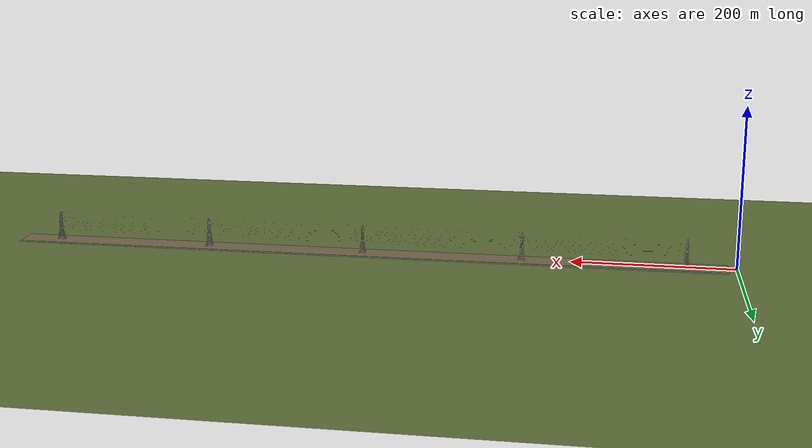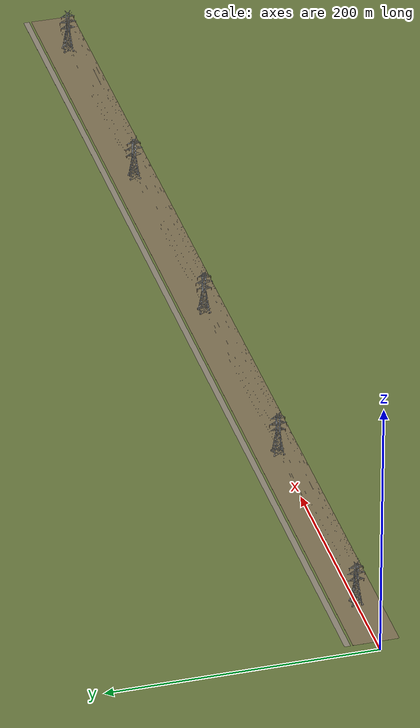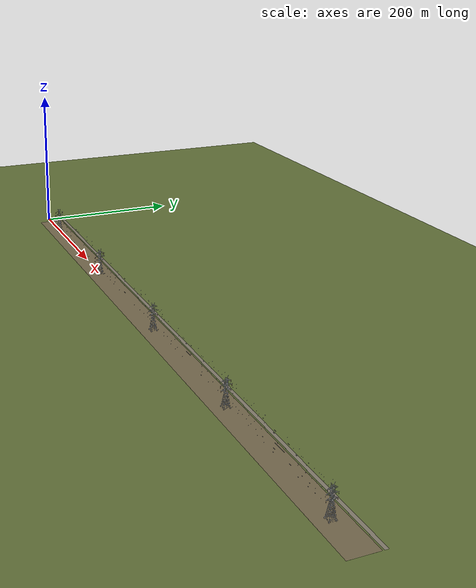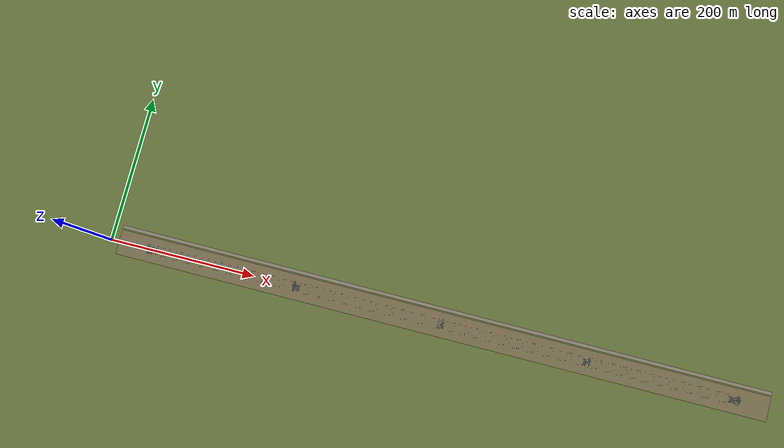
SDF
<?xml version="1.0" encoding="UTF-8"?>
<sdf version="1.9">
  <world name="default">

    <physics type="ode">
      <max_step_size>0.004</max_step_size>
      <real_time_factor>1.0</real_time_factor>
      <real_time_update_rate>250</real_time_update_rate>
    </physics>
    <gravity>0 0 -9.8</gravity>
    <magnetic_field>6e-06 2.3e-05 -4.2e-05</magnetic_field>
    <atmosphere type="adiabatic"/>

    <scene>
      <grid>false</grid>
      <ambient>0.6 0.6 0.6 1</ambient>
      <background>0.53 0.81 0.98 1</background>
      <shadows>true</shadows>
      <sky>
        <time>10</time>
        <sunrise>6</sunrise>
        <sunset>20</sunset>
        <clouds>
          <speed>12</speed>
          <mean_size>0.5</mean_size>
          <ambient>0.8 0.8 0.8 1</ambient>
        </clouds>
      </sky>
    </scene>

    <!-- Textured ground plane -->
    <model name="ground_plane">
      <static>true</static>
      <link name="link">
        <collision name="collision">
          <geometry>
            <plane>
              <normal>0 0 1</normal>
              <size>1 1</size>
            </plane>
          </geometry>
          <surface>
            <friction><ode/></friction>
            <bounce/>
            <contact/>
          </surface>
        </collision>
        <visual name="visual">
          <cast_shadows>false</cast_shadows>
          <geometry>
            <plane>
              <normal>0 0 1</normal>
              <size>4000 4000</size>
            </plane>
          </geometry>
          <material>
            <ambient>0.22 0.28 0.13 1</ambient>
            <diffuse>0.38 0.44 0.22 1</diffuse>
            <specular>0.05 0.05 0.05 1</specular>
          </material>
        </visual>
        <pose>0 0 0 0 0 0</pose>
        <inertial>
          <pose>0 0 0 0 0 0</pose>
          <mass>1</mass>
          <inertia>
            <ixx>1</ixx><ixy>0</ixy><ixz>0</ixz>
            <iyy>1</iyy><iyz>0</iyz><izz>1</izz>
          </inertia>
        </inertial>
        <enable_wind>false</enable_wind>
      </link>
      <pose>0 0 0 0 0 0</pose>
      <self_collide>false</self_collide>
    </model>

    <!-- Sun lighting -->
    <light name="sunUTC" type="directional">
      <pose>0 0 500 0 0 0</pose>
      <cast_shadows>true</cast_shadows>
      <intensity>1</intensity>
      <direction>-0.8 0.2 -0.5</direction>
      <diffuse>1.0 0.95 0.8 1</diffuse>
      <specular>0.5 0.5 0.5 1</specular>
      <attenuation>
        <range>2000</range>
        <linear>0</linear>
        <constant>1</constant>
        <quadratic>0</quadratic>
      </attenuation>
      <spot>
        <inner_angle>0</inner_angle>
        <outer_angle>0</outer_angle>
        <falloff>0</falloff>
      </spot>
    </light>

    <spherical_coordinates>
      <surface_model>EARTH_WGS84</surface_model>
      <world_frame_orientation>ENU</world_frame_orientation>
      <latitude_deg>24.867412</latitude_deg>
      <longitude_deg>67.057352</longitude_deg>
      <elevation>8</elevation>
    </spherical_coordinates>

    <include>
      <uri>model://hv_tower_220kv</uri>
      <name>tower_1</name>
      <pose>60 0 0 0 0 0</pose>
    </include>
    <include>
      <uri>model://hv_tower_220kv</uri>
      <name>tower_2</name>
      <pose>260 0 0 0 0 0</pose>
    </include>
    <include>
      <uri>model://hv_tower_220kv</uri>
      <name>tower_3</name>
      <pose>460 0 0 0 0 0</pose>
    </include>
    <include>
      <uri>model://hv_tower_220kv</uri>
      <name>tower_4</name>
      <pose>660 0 0 0 0 0</pose>
    </include>
    <include>
      <uri>model://hv_tower_220kv</uri>
      <name>tower_5</name>
      <pose>860 0 0 0 0 0</pose>
    </include>

    <include>
      <uri>model://hv_span_220kv</uri>
      <name>span_1_2</name>
      <pose>60 0 0 0 0 0</pose>
    </include>
    <include>
      <uri>model://hv_span_220kv</uri>
      <name>span_2_3</name>
      <pose>260 0 0 0 0 0</pose>
    </include>
    <include>
      <uri>model://hv_span_220kv</uri>
      <name>span_3_4</name>
      <pose>460 0 0 0 0 0</pose>
    </include>
    <include>
      <uri>model://hv_span_220kv</uri>
      <name>span_4_5</name>
      <pose>660 0 0 0 0 0</pose>
    </include>

    <model name="right_of_way">
      <static>true</static>
      <link name="link">
        <visual name="cleared_strip">
          <cast_shadows>false</cast_shadows>
          <pose>460 0 0.01 0 0 0</pose>
          <geometry><box><size>900 34 0.02</size></box></geometry>
          <material>
            <ambient>0.24 0.21 0.15 1</ambient>
            <diffuse>0.46 0.41 0.30 1</diffuse>
            <specular>0.03 0.03 0.03 1</specular>
          </material>
        </visual>
        <visual name="access_track">
          <cast_shadows>false</cast_shadows>
          <pose>460 21 0.02 0 0 0</pose>
          <geometry><box><size>900 4.5 0.02</size></box></geometry>
          <material>
            <ambient>0.26 0.24 0.20 1</ambient>
            <diffuse>0.52 0.49 0.43 1</diffuse>
            <specular>0.03 0.03 0.03 1</specular>
          </material>
        </visual>
      </link>
    </model>

    <include>
      <uri>model://m4e_camera</uri>
      <name>m4e_camera</name>
      <pose>0 0 0.004 0 0 0</pose>
    </include>

  </world>
</sdf>

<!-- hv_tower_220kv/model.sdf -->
<sdf version="1.9">
  <model name="hv_tower_220kv">
    <static>true</static>
    <link name="link">
      <visual name="steel">
        <cast_shadows>true</cast_shadows>
        <geometry><mesh><uri>meshes/tower_steel.obj</uri></mesh></geometry>
        <material>
          <ambient>0.30 0.31 0.33 1</ambient>
          <diffuse>0.62 0.64 0.66 1</diffuse>
          <specular>0.25 0.25 0.26 1</specular>
        </material>
      </visual>
      <visual name="insulators">
        <cast_shadows>true</cast_shadows>
        <geometry><mesh><uri>meshes/insulators.obj</uri></mesh></geometry>
        <material>
          <ambient>0.20 0.15 0.11 1</ambient>
          <diffuse>0.46 0.34 0.25 1</diffuse>
          <specular>0.35 0.30 0.25 1</specular>
        </material>
      </visual>
      <visual name="foundations">
        <cast_shadows>true</cast_shadows>
        <geometry><mesh><uri>meshes/foundations.obj</uri></mesh></geometry>
        <material>
          <ambient>0.28 0.27 0.25 1</ambient>
          <diffuse>0.60 0.58 0.54 1</diffuse>
          <specular>0.05 0.05 0.05 1</specular>
        </material>
      </visual>

      <collision name="body_0"><pose>0 0 2.67 0 0 0</pose>
        <geometry><box><size>6.52 6.52 5.33</size></box></geometry></collision>
      <collision name="body_1"><pose>0 0 8.00 0 0 0</pose>
        <geometry><box><size>5.16 5.16 5.33</size></box></geometry></collision>
      <collision name="body_2"><pose>0 0 13.33 0 0 0</pose>
        <geometry><box><size>3.79 3.79 5.33</size></box></geometry></collision>
      <collision name="body_3"><pose>0 0 18.67 0 0 0</pose>
        <geometry><box><size>2.60 2.60 5.33</size></box></geometry></collision>
      <collision name="body_4"><pose>0 0 24.00 0 0 0</pose>
        <geometry><box><size>2.60 2.60 5.33</size></box></geometry></collision>
      <collision name="body_5"><pose>0 0 29.34 0 0 0</pose>
        <geometry><box><size>2.60 2.60 5.33</size></box></geometry></collision>
      <collision name="arm_0"><pose>0 0 21.02 0 0 0</pose>
        <geometry><box><size>1.6 11.90 3.4</size></box></geometry></collision>
      <collision name="arm_1"><pose>0 0 26.49 0 0 0</pose>
        <geometry><box><size>1.6 13.50 3.4</size></box></geometry></collision>
      <collision name="arm_2"><pose>0 0 31.49 0 0 0</pose>
        <geometry><box><size>1.6 11.10 3.4</size></box></geometry></collision>
      <collision name="peak"><pose>0 0 34.00 0 0 0</pose>
        <geometry><box><size>1.2 4.80 4.00</size></box></geometry></collision>
      <collision name="insulator_0"><pose>0 -5.60 18.82 0 0 0</pose>
        <geometry><cylinder><radius>0.22</radius><length>2.40</length></cylinder></geometry></collision>
      <collision name="insulator_1"><pose>0 5.60 18.82 0 0 0</pose>
        <geometry><cylinder><radius>0.22</radius><length>2.40</length></cylinder></geometry></collision>
      <collision name="insulator_2"><pose>0 -6.40 24.29 0 0 0</pose>
        <geometry><cylinder><radius>0.22</radius><length>2.40</length></cylinder></geometry></collision>
      <collision name="insulator_3"><pose>0 6.40 24.29 0 0 0</pose>
        <geometry><cylinder><radius>0.22</radius><length>2.40</length></cylinder></geometry></collision>
      <collision name="insulator_4"><pose>0 -5.20 29.29 0 0 0</pose>
        <geometry><cylinder><radius>0.22</radius><length>2.40</length></cylinder></geometry></collision>
      <collision name="insulator_5"><pose>0 5.20 29.29 0 0 0</pose>
        <geometry><cylinder><radius>0.22</radius><length>2.40</length></cylinder></geometry></collision>
    </link>
  </model>
</sdf>

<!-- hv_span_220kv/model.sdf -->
<sdf version="1.9">
  <model name="hv_span_220kv">
    <static>true</static>
    <link name="link">
      <visual name="conductors">
        <cast_shadows>false</cast_shadows>
        <geometry><mesh><uri>meshes/conductors.obj</uri></mesh></geometry>
        <material>
          <ambient>0.16 0.16 0.17 1</ambient>
          <diffuse>0.34 0.35 0.36 1</diffuse>
          <specular>0.12 0.12 0.12 1</specular>
        </material>
      </visual>
      <visual name="earthwires">
        <cast_shadows>false</cast_shadows>
        <geometry><mesh><uri>meshes/earthwires.obj</uri></mesh></geometry>
        <material>
          <ambient>0.26 0.27 0.28 1</ambient>
          <diffuse>0.56 0.57 0.59 1</diffuse>
          <specular>0.30 0.30 0.32 1</specular>
        </material>
      </visual>
      <visual name="dampers">
        <cast_shadows>false</cast_shadows>
        <geometry><mesh><uri>meshes/dampers.obj</uri></mesh></geometry>
        <material>
          <ambient>0.18 0.18 0.19 1</ambient>
          <diffuse>0.38 0.38 0.40 1</diffuse>
          <specular>0.20 0.20 0.20 1</specular>
        </material>
      </visual>

      <collision name="c0_0"><pose>16.67 -5.60 16.37 0 1.6457 0</pose>
        <geometry><cylinder><radius>0.08</radius><length>33.43</length></cylinder></geometry></collision>
      <collision name="c0_1"><pose>50.00 -5.60 14.37 0 1.6158 0</pose>
        <geometry><cylinder><radius>0.08</radius><length>33.37</length></cylinder></geometry></collision>
      <collision name="c0_2"><pose>83.33 -5.60 13.37 0 1.5858 0</pose>
        <geometry><cylinder><radius>0.08</radius><length>33.34</length></cylinder></geometry></collision>
      <collision name="c0_3"><pose>116.67 -5.60 13.37 0 1.5558 0</pose>
        <geometry><cylinder><radius>0.08</radius><length>33.34</length></cylinder></geometry></collision>
      <collision name="c0_4"><pose>150.00 -5.60 14.37 0 1.5258 0</pose>
        <geometry><cylinder><radius>0.08</radius><length>33.37</length></cylinder></geometry></collision>
      <collision name="c0_5"><pose>183.33 -5.60 16.37 0 1.4959 0</pose>
        <geometry><cylinder><radius>0.08</radius><length>33.43</length></cylinder></geometry></collision>
      <collision name="c1_0"><pose>16.67 5.60 16.37 0 1.6457 0</pose>
        <geometry><cylinder><radius>0.08</radius><length>33.43</length></cylinder></geometry></collision>
      <collision name="c1_1"><pose>50.00 5.60 14.37 0 1.6158 0</pose>
        <geometry><cylinder><radius>0.08</radius><length>33.37</length></cylinder></geometry></collision>
      <collision name="c1_2"><pose>83.33 5.60 13.37 0 1.5858 0</pose>
        <geometry><cylinder><radius>0.08</radius><length>33.34</length></cylinder></geometry></collision>
      <collision name="c1_3"><pose>116.67 5.60 13.37 0 1.5558 0</pose>
        <geometry><cylinder><radius>0.08</radius><length>33.34</length></cylinder></geometry></collision>
      <collision name="c1_4"><pose>150.00 5.60 14.37 0 1.5258 0</pose>
        <geometry><cylinder><radius>0.08</radius><length>33.37</length></cylinder></geometry></collision>
      <collision name="c1_5"><pose>183.33 5.60 16.37 0 1.4959 0</pose>
        <geometry><cylinder><radius>0.08</radius><length>33.43</length></cylinder></geometry></collision>
      <collision name="c2_0"><pose>16.67 -6.40 21.84 0 1.6457 0</pose>
        <geometry><cylinder><radius>0.08</radius><length>33.43</length></cylinder></geometry></collision>
      <collision name="c2_1"><pose>50.00 -6.40 19.84 0 1.6158 0</pose>
        <geometry><cylinder><radius>0.08</radius><length>33.37</length></cylinder></geometry></collision>
      <collision name="c2_2"><pose>83.33 -6.40 18.84 0 1.5858 0</pose>
        <geometry><cylinder><radius>0.08</radius><length>33.34</length></cylinder></geometry></collision>
      <collision name="c2_3"><pose>116.67 -6.40 18.84 0 1.5558 0</pose>
        <geometry><cylinder><radius>0.08</radius><length>33.34</length></cylinder></geometry></collision>
      <collision name="c2_4"><pose>150.00 -6.40 19.84 0 1.5258 0</pose>
        <geometry><cylinder><radius>0.08</radius><length>33.37</length></cylinder></geometry></collision>
      <collision name="c2_5"><pose>183.33 -6.40 21.84 0 1.4959 0</pose>
        <geometry><cylinder><radius>0.08</radius><length>33.43</length></cylinder></geometry></collision>
      <collision name="c3_0"><pose>16.67 6.40 21.84 0 1.6457 0</pose>
        <geometry><cylinder><radius>0.08</radius><length>33.43</length></cylinder></geometry></collision>
      <collision name="c3_1"><pose>50.00 6.40 19.84 0 1.6158 0</pose>
        <geometry><cylinder><radius>0.08</radius><length>33.37</length></cylinder></geometry></collision>
      <collision name="c3_2"><pose>83.33 6.40 18.84 0 1.5858 0</pose>
        <geometry><cylinder><radius>0.08</radius><length>33.34</length></cylinder></geometry></collision>
      <collision name="c3_3"><pose>116.67 6.40 18.84 0 1.5558 0</pose>
        <geometry><cylinder><radius>0.08</radius><length>33.34</length></cylinder></geometry></collision>
      <collision name="c3_4"><pose>150.00 6.40 19.84 0 1.5258 0</pose>
        <geometry><cylinder><radius>0.08</radius><length>33.37</length></cylinder></geometry></collision>
      <collision name="c3_5"><pose>183.33 6.40 21.84 0 1.4959 0</pose>
        <geometry><cylinder><radius>0.08</radius><length>33.43</length></cylinder></geometry></collision>
      <collision name="c4_0"><pose>16.67 -5.20 26.84 0 1.6457 0</pose>
        <geometry><cylinder><radius>0.08</radius><length>33.43</length></cylinder></geometry></collision>
      <collision name="c4_1"><pose>50.00 -5.20 24.84 0 1.6158 0</pose>
        <geometry><cylinder><radius>0.08</radius><length>33.37</length></cylinder></geometry></collision>
      <collision name="c4_2"><pose>83.33 -5.20 23.84 0 1.5858 0</pose>
        <geometry><cylinder><radius>0.08</radius><length>33.34</length></cylinder></geometry></collision>
      <collision name="c4_3"><pose>116.67 -5.20 23.84 0 1.5558 0</pose>
        <geometry><cylinder><radius>0.08</radius><length>33.34</length></cylinder></geometry></collision>
      <collision name="c4_4"><pose>150.00 -5.20 24.84 0 1.5258 0</pose>
        <geometry><cylinder><radius>0.08</radius><length>33.37</length></cylinder></geometry></collision>
      <collision name="c4_5"><pose>183.33 -5.20 26.84 0 1.4959 0</pose>
        <geometry><cylinder><radius>0.08</radius><length>33.43</length></cylinder></geometry></collision>
      <collision name="c5_0"><pose>16.67 5.20 26.84 0 1.6457 0</pose>
        <geometry><cylinder><radius>0.08</radius><length>33.43</length></cylinder></geometry></collision>
      <collision name="c5_1"><pose>50.00 5.20 24.84 0 1.6158 0</pose>
        <geometry><cylinder><radius>0.08</radius><length>33.37</length></cylinder></geometry></collision>
      <collision name="c5_2"><pose>83.33 5.20 23.84 0 1.5858 0</pose>
        <geometry><cylinder><radius>0.08</radius><length>33.34</length></cylinder></geometry></collision>
      <collision name="c5_3"><pose>116.67 5.20 23.84 0 1.5558 0</pose>
        <geometry><cylinder><radius>0.08</radius><length>33.34</length></cylinder></geometry></collision>
      <collision name="c5_4"><pose>150.00 5.20 24.84 0 1.5258 0</pose>
        <geometry><cylinder><radius>0.08</radius><length>33.37</length></cylinder></geometry></collision>
      <collision name="c5_5"><pose>183.33 5.20 26.84 0 1.4959 0</pose>
        <geometry><cylinder><radius>0.08</radius><length>33.43</length></cylinder></geometry></collision>
      <collision name="e0_0"><pose>16.67 -2.20 35.02 0 1.6292 0</pose>
        <geometry><cylinder><radius>0.08</radius><length>33.39</length></cylinder></geometry></collision>
      <collision name="e0_1"><pose>50.00 -2.20 33.46 0 1.6059 0</pose>
        <geometry><cylinder><radius>0.08</radius><length>33.35</length></cylinder></geometry></collision>
      <collision name="e0_2"><pose>83.33 -2.20 32.68 0 1.5825 0</pose>
        <geometry><cylinder><radius>0.08</radius><length>33.34</length></cylinder></geometry></collision>
      <collision name="e0_3"><pose>116.67 -2.20 32.68 0 1.5591 0</pose>
        <geometry><cylinder><radius>0.08</radius><length>33.34</length></cylinder></geometry></collision>
      <collision name="e0_4"><pose>150.00 -2.20 33.46 0 1.5357 0</pose>
        <geometry><cylinder><radius>0.08</radius><length>33.35</length></cylinder></geometry></collision>
      <collision name="e0_5"><pose>183.33 -2.20 35.02 0 1.5124 0</pose>
        <geometry><cylinder><radius>0.08</radius><length>33.39</length></cylinder></geometry></collision>
      <collision name="e1_0"><pose>16.67 2.20 35.02 0 1.6292 0</pose>
        <geometry><cylinder><radius>0.08</radius><length>33.39</length></cylinder></geometry></collision>
      <collision name="e1_1"><pose>50.00 2.20 33.46 0 1.6059 0</pose>
        <geometry><cylinder><radius>0.08</radius><length>33.35</length></cylinder></geometry></collision>
      <collision name="e1_2"><pose>83.33 2.20 32.68 0 1.5825 0</pose>
        <geometry><cylinder><radius>0.08</radius><length>33.34</length></cylinder></geometry></collision>
      <collision name="e1_3"><pose>116.67 2.20 32.68 0 1.5591 0</pose>
        <geometry><cylinder><radius>0.08</radius><length>33.34</length></cylinder></geometry></collision>
      <collision name="e1_4"><pose>150.00 2.20 33.46 0 1.5357 0</pose>
        <geometry><cylinder><radius>0.08</radius><length>33.35</length></cylinder></geometry></collision>
      <collision name="e1_5"><pose>183.33 2.20 35.02 0 1.5124 0</pose>
        <geometry><cylinder><radius>0.08</radius><length>33.39</length></cylinder></geometry></collision>
    </link>
  </model>
</sdf>

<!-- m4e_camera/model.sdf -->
<sdf version="1.9">
  <model name="m4e_camera">
    <link name="gimbal_link">
      <pose>0 0 0.004 0 0 0</pose>
      <gravity>false</gravity>
      <inertial>
        <mass>0.12</mass>
        <inertia>
          <ixx>0.00015</ixx>
          <iyy>0.00015</iyy>
          <izz>0.00015</izz>
        </inertia>
      </inertial>
      <visual name="gimbal_joint_visual">
        <pose>0 -0.001 0.005 0 0 -1.5708</pose>
        <transparency>0</transparency>
        <geometry>
          <mesh>
            <uri>model://m4e/meshes/gimbal_joint.dae</uri>
          </mesh>
        </geometry>
        <material>
          <ambient>0.15 0.15 0.15 1</ambient>
          <diffuse>0.2 0.2 0.2 1</diffuse>
          <specular>0.1 0.1 0.1 1</specular>
        </material>
      </visual>
    </link>

    <joint name="camera_joint" type="fixed">
      <parent>gimbal_link</parent>
      <child>camera_link</child>
    </joint>

    <link name="camera_link">
      <pose>0 0 0.004 0 0 0</pose>
      <gravity>false</gravity>
      <inertial>
        <mass>0.06</mass>
        <inertia>
          <ixx>0.00006</ixx>
          <iyy>0.00006</iyy>
          <izz>0.00006</izz>
        </inertia>
      </inertial>

      <visual name="gimbal_visual">
        <pose>0 0 0 0 0 -1.5708</pose>
        <transparency>0</transparency>
        <geometry>
          <mesh>
            <uri>model://m4e/meshes/gimbal.dae</uri>
          </mesh>
        </geometry>
        <material>
          <ambient>0.15 0.15 0.15 1</ambient>
          <diffuse>0.2 0.2 0.2 1</diffuse>
          <specular>0.1 0.1 0.1 1</specular>
        </material>
      </visual>
    </link>

    <joint name="lens_joint" type="fixed">
      <parent>camera_link</parent>
      <child>lens_link</child>
    </joint>

    <link name="lens_link">
      <pose>0 0 0.004 0 0 0</pose>
      <gravity>false</gravity>
      <inertial>
        <mass>0.04</mass>
        <inertia>
          <ixx>0.00004</ixx>
          <iyy>0.00004</iyy>
          <izz>0.00004</izz>
        </inertia>
      </inertial>

      <sensor name="m4e_wide" type="camera">
        <pose>0 0 0 0 0 0</pose>
        <always_on>true</always_on>
        <update_rate>1</update_rate>
        <topic>/drone/camera/wide/image_raw</topic>
        <camera>
          <horizontal_fov>1.4661</horizontal_fov>
          <image>
            <width>5280</width>
            <height>3956</height>
            <format>R8G8B8</format>
          </image>
          <clip>
            <near>0.1</near>
            <far>500.0</far>
          </clip>
          <lens>
            <intrinsics>
              <fx>2932.0</fx>
              <fy>2955.9</fy>
              <cx>2640.0</cx>
              <cy>1978.0</cy>
              <s>0.0</s>
            </intrinsics>
          </lens>
        </camera>
      </sensor>

      <sensor name="m4e_medium_tele" type="camera">
        <pose>0 0 0 0 0 0</pose>
        <always_on>true</always_on>
        <update_rate>1</update_rate>
        <topic>/drone/camera/medium_tele/image_raw</topic>
        <camera>
          <horizontal_fov>0.6109</horizontal_fov>
          <image>
            <width>8064</width>
            <height>6048</height>
            <format>R8G8B8</format>
          </image>
          <clip>
            <near>0.5</near>
            <far>1000.0</far>
          </clip>
          <lens>
            <intrinsics>
              <fx>12787.9</fx>
              <fy>12744.3</fy>
              <cx>4032.0</cx>
              <cy>3024.0</cy>
              <s>0.0</s>
            </intrinsics>
          </lens>
        </camera>
      </sensor>

     <sensor name="m4e_tele" type="camera">
        <pose>0 0 0 0 0 0</pose>
        <always_on>true</always_on>
        <update_rate>1</update_rate>
        <topic>/drone/camera/tele/image_raw</topic>
        <camera>
          <horizontal_fov>0.2618</horizontal_fov>
          <image>
            <width>8192</width>
            <height>6144</height>
            <format>R8G8B8</format>
          </image>
          <clip>
            <near>1.0</near>
            <far>2000.0</far>
          </clip>
          <lens>
            <intrinsics>
              <fx>31112.2</fx>
              <fy>31520.8</fy>
              <cx>4096.0</cx>
              <cy>3072.0</cy>
              <s>0.0</s>
            </intrinsics>
          </lens>
        </camera>
      </sensor>

      <sensor name="m4e_wide_video4k" type="camera">
        <pose>0 0 0 0 0 0</pose>
        <always_on>true</always_on>
        <update_rate>30</update_rate>
        <topic>/drone/camera/wide/video4k/image_raw</topic>
        <camera>
          <horizontal_fov>1.4661</horizontal_fov>
          <image>
            <width>3840</width>
            <height>2160</height>
            <format>R8G8B8</format>
          </image>
          <clip>
            <near>0.1</near>
            <far>500.0</far>
          </clip>
          <lens>
            <intrinsics>
              <fx>2132.4</fx>
              <fy>1614.0</fy>
              <cx>1920.0</cx>
              <cy>1080.0</cy>
              <s>0.0</s>
            </intrinsics>
          </lens>
        </camera>
      </sensor>

      <sensor name="m4e_wide_videofhd" type="camera">
        <pose>0 0 0 0 0 0</pose>
        <always_on>true</always_on>
        <update_rate>30</update_rate>
        <topic>/drone/camera/wide/videofhd/image_raw</topic>
        <camera>
          <horizontal_fov>1.4661</horizontal_fov>
          <image>
            <width>1920</width>
            <height>1080</height>
            <format>R8G8B8</format>
          </image>
          <clip>
            <near>0.1</near>
            <far>500.0</far>
          </clip>
          <lens>
            <intrinsics>
              <fx>1066.2</fx>
              <fy>807.0</fy>
              <cx>960.0</cx>
              <cy>540.0</cy>
              <s>0.0</s>
            </intrinsics>
          </lens>
        </camera>
      </sensor>

      <sensor name="m4e_wide_preview" type="camera">
        <pose>0 0 0 0 0 0</pose>
        <always_on>true</always_on>
        <update_rate>30</update_rate>
        <topic>/drone/camera/wide/preview/image_raw</topic>
        <camera>
          <horizontal_fov>1.4661</horizontal_fov>
          <image>
            <width>640</width>
            <height>360</height>
            <format>R8G8B8</format>
          </image>
          <clip>
            <near>0.1</near>
            <far>500.0</far>
          </clip>
          <lens>
            <intrinsics>
              <fx>355.4</fx>
              <fy>269.0</fy>
              <cx>320.0</cx>
              <cy>180.0</cy>
              <s>0.0</s>
            </intrinsics>
          </lens>
        </camera>
      </sensor>

      <sensor name="m4e_medium_tele_video4k" type="camera">
        <pose>0 0 0 0 0 0</pose>
        <always_on>true</always_on>
        <update_rate>30</update_rate>
        <topic>/drone/camera/medium_tele/video4k/image_raw</topic>
        <camera>
          <horizontal_fov>0.6109</horizontal_fov>
          <image>
            <width>3840</width>
            <height>2160</height>
            <format>R8G8B8</format>
          </image>
          <clip>
            <near>0.5</near>
            <far>1000.0</far>
          </clip>
          <lens>
            <intrinsics>
              <fx>6089.5</fx>
              <fy>4551.5</fy>
              <cx>1920.0</cx>
              <cy>1080.0</cy>
              <s>0.0</s>
            </intrinsics>
          </lens>
        </camera>
      </sensor>

      <sensor name="m4e_medium_tele_videofhd" type="camera">
        <pose>0 0 0 0 0 0</pose>
        <always_on>true</always_on>
        <update_rate>30</update_rate>
        <topic>/drone/camera/medium_tele/videofhd/image_raw</topic>
        <camera>
          <horizontal_fov>0.6109</horizontal_fov>
          <image>
            <width>1920</width>
            <height>1080</height>
            <format>R8G8B8</format>
          </image>
          <clip>
            <near>0.5</near>
            <far>1000.0</far>
          </clip>
          <lens>
            <intrinsics>
              <fx>3044.7</fx>
              <fy>2275.8</fy>
              <cx>960.0</cx>
              <cy>540.0</cy>
              <s>0.0</s>
            </intrinsics>
          </lens>
        </camera>
      </sensor>

      <sensor name="m4e_medium_tele_preview" type="camera">
        <pose>0 0 0 0 0 0</pose>
        <always_on>true</always_on>
        <update_rate>30</update_rate>
        <topic>/drone/camera/medium_tele/preview/image_raw</topic>
        <camera>
          <horizontal_fov>0.6109</horizontal_fov>
          <image>
            <width>640</width>
            <height>360</height>
            <format>R8G8B8</format>
          </image>
          <clip>
            <near>0.5</near>
            <far>1000.0</far>
          </clip>
          <lens>
            <intrinsics>
              <fx>1014.9</fx>
              <fy>758.6</fy>
              <cx>320.0</cx>
              <cy>180.0</cy>
              <s>0.0</s>
            </intrinsics>
          </lens>
        </camera>
      </sensor>

      <sensor name="m4e_tele_video4k" type="camera">
        <pose>0 0 0 0 0 0</pose>
        <always_on>true</always_on>
        <update_rate>30</update_rate>
        <topic>/drone/camera/tele/video4k/image_raw</topic>
        <camera>
          <horizontal_fov>0.2618</horizontal_fov>
          <image>
            <width>3840</width>
            <height>2160</height>
            <format>R8G8B8</format>
          </image>
          <clip>
            <near>1.0</near>
            <far>2000.0</far>
          </clip>
          <lens>
            <intrinsics>
              <fx>14583.8</fx>
              <fy>11081.5</fy>
              <cx>1920.0</cx>
              <cy>1080.0</cy>
              <s>0.0</s>
            </intrinsics>
          </lens>
        </camera>
      </sensor>

      <sensor name="m4e_tele_videofhd" type="camera">
        <pose>0 0 0 0 0 0</pose>
        <always_on>true</always_on>
        <update_rate>30</update_rate>
        <topic>/drone/camera/tele/videofhd/image_raw</topic>
        <camera>
          <horizontal_fov>0.2618</horizontal_fov>
          <image>
            <width>1920</width>
            <height>1080</height>
            <format>R8G8B8</format>
          </image>
          <clip>
            <near>1.0</near>
            <far>2000.0</far>
          </clip>
          <lens>
            <intrinsics>
              <fx>7291.9</fx>
              <fy>5540.8</fy>
              <cx>960.0</cx>
              <cy>540.0</cy>
              <s>0.0</s>
            </intrinsics>
          </lens>
        </camera>
      </sensor>

      <sensor name="m4e_tele_preview" type="camera">
        <pose>0 0 0 0 0 0</pose>
        <always_on>true</always_on>
        <update_rate>30</update_rate>
        <topic>/drone/camera/tele/preview/image_raw</topic>
        <camera>
          <horizontal_fov>0.2618</horizontal_fov>
          <image>
            <width>640</width>
            <height>360</height>
            <format>R8G8B8</format>
          </image>
          <clip>
            <near>1.0</near>
            <far>2000.0</far>
          </clip>
          <lens>
            <intrinsics>
              <fx>2430.6</fx>
              <fy>1846.9</fy>
              <cx>320.0</cx>
              <cy>180.0</cy>
              <s>0.0</s>
            </intrinsics>
          </lens>
        </camera>
      </sensor>

      <sensor name="lrf" type="gpu_lidar">
        <pose>0 0 0 0 0 0</pose>
        <always_on>true</always_on>
        <visualize>true</visualize>
        <update_rate>1</update_rate>
        <topic>/drone/lrf/range</topic>
        <gz_frame_id>lens_link</gz_frame_id>
        <lidar>
          <scan>
            <horizontal>
              <samples>1</samples>
              <resolution>1</resolution>
              <min_angle>0</min_angle>
              <max_angle>0</max_angle>
            </horizontal>
          </scan>
          <range>
            <min>1.0</min>
            <max>1800.0</max>
            <resolution>0.01</resolution>
          </range>
        </lidar>
      </sensor>
    </link>
  </model>
</sdf>
